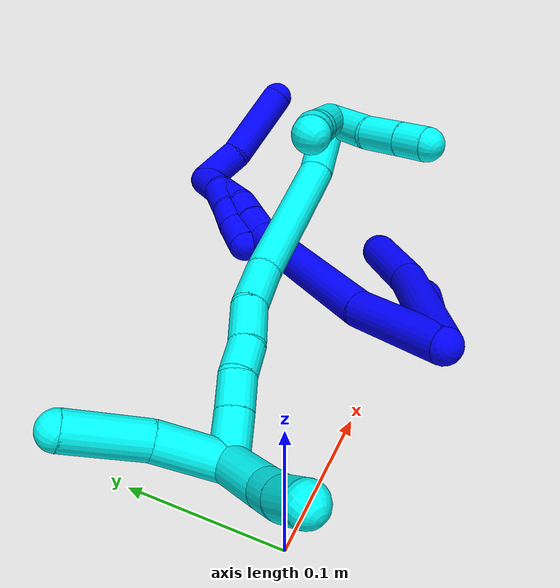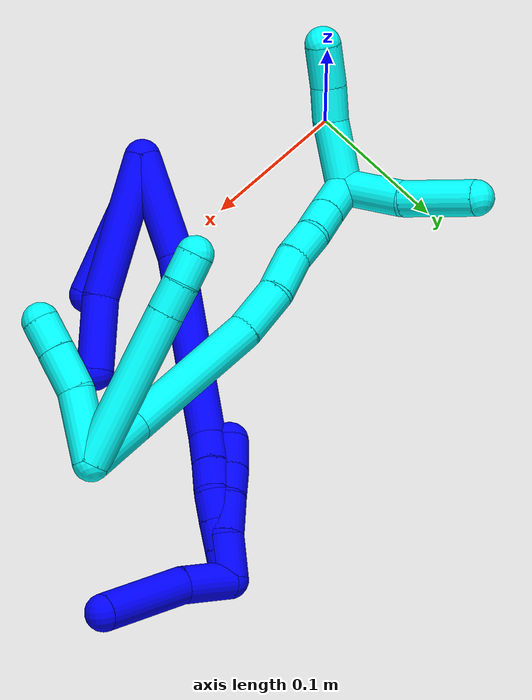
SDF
<sdf version="1.7">
 <world name="default">
  <model name="1">
   <static>0</static>
   <link name="1">
    <collision name="collision-cylinder-e_1_2_8">
     <pose>0.005926 0.026639 0.041628 -0.56926 0.119333 -0.034952</pose>
     <geometry><cylinder><radius>0.0125</radius><length>0.099551</length></cylinder></geometry>
     <surface>
      <friction><ode><mu>1.16</mu><mu2>1.16</mu2><slip1>0</slip1><slip2>0</slip2></ode></friction>
      <contact><ode><kp>1e+06</kp><kd>1</kd><max_vel>0</max_vel><min_depth>0.001</min_depth></ode></contact>
     </surface>
    </collision>
    <visual name="visual-cylinder-e_1_2_8">
     <pose>0.005926 0.026639 0.041628 -0.56926 0.119333 -0.034952</pose>
     <geometry><cylinder><radius>0.0125</radius><length>0.099551</length></cylinder></geometry>
     <material><ambient>0 0 1 1</ambient></material>
    </visual>
    <collision name="collision-cylinder-e_2_8_6">
     <pose>0.01939 0.063236 0.105171 -0.426524 0.303489 -0.066207</pose>
     <geometry><cylinder><radius>0.0125</radius><length>0.050449</length></cylinder></geometry>
     <surface>
      <friction><ode><mu>1.16</mu><mu2>1.16</mu2><slip1>0</slip1><slip2>0</slip2></ode></friction>
      <contact><ode><kp>1e+06</kp><kd>1</kd><max_vel>0</max_vel><min_depth>0.001</min_depth></ode></contact>
     </surface>
    </collision>
    <visual name="visual-cylinder-e_2_8_6">
     <pose>0.01939 0.063236 0.105171 -0.426524 0.303489 -0.066207</pose>
     <geometry><cylinder><radius>0.0125</radius><length>0.050449</length></cylinder></geometry>
     <material><ambient>0 0 1 1</ambient></material>
    </visual>
    <collision name="collision-cylinder-e_1_2_9">
     <pose>-0.000375 0.004356 0.010664 -0.387774 -0.03258 0.006398</pose>
     <geometry><cylinder><radius>0.0125</radius><length>0.02305</length></cylinder></geometry>
     <surface>
      <friction><ode><mu>1.16</mu><mu2>1.16</mu2><slip1>0</slip1><slip2>0</slip2></ode></friction>
      <contact><ode><kp>1e+06</kp><kd>1</kd><max_vel>0</max_vel><min_depth>0.001</min_depth></ode></contact>
     </surface>
    </collision>
    <visual name="visual-cylinder-e_1_2_9">
     <pose>-0.000375 0.004356 0.010664 -0.387774 -0.03258 0.006398</pose>
     <geometry><cylinder><radius>0.0125</radius><length>0.02305</length></cylinder></geometry>
     <material><ambient>0 0 1 1</ambient></material>
    </visual>
    <collision name="collision-cylinder-e_2_9_5">
     <pose>-0.003172 0.031211 0.052443 -0.626063 -0.062982 0.020392</pose>
     <geometry><cylinder><radius>0.0125</radius><length>0.07695</length></cylinder></geometry>
     <surface>
      <friction><ode><mu>1.16</mu><mu2>1.16</mu2><slip1>0</slip1><slip2>0</slip2></ode></friction>
      <contact><ode><kp>1e+06</kp><kd>1</kd><max_vel>0</max_vel><min_depth>0.001</min_depth></ode></contact>
     </surface>
    </collision>
    <visual name="visual-cylinder-e_2_9_5">
     <pose>-0.003172 0.031211 0.052443 -0.626063 -0.062982 0.020392</pose>
     <geometry><cylinder><radius>0.0125</radius><length>0.07695</length></cylinder></geometry>
     <material><ambient>0 0 1 1</ambient></material>
    </visual>
    <collision name="collision-cylinder-e_1_2_10">
     <pose>0.016101 0.001353 0.032025 -0.042237 0.465493 -0.010013</pose>
     <geometry><cylinder><radius>0.0125</radius><length>0.07174</length></cylinder></geometry>
     <surface>
      <friction><ode><mu>1.16</mu><mu2>1.16</mu2><slip1>0</slip1><slip2>0</slip2></ode></friction>
      <contact><ode><kp>1e+06</kp><kd>1</kd><max_vel>0</max_vel><min_depth>0.001</min_depth></ode></contact>
     </surface>
    </collision>
    <visual name="visual-cylinder-e_1_2_10">
     <pose>0.016101 0.001353 0.032025 -0.042237 0.465493 -0.010013</pose>
     <geometry><cylinder><radius>0.0125</radius><length>0.07174</length></cylinder></geometry>
     <material><ambient>0 0 1 1</ambient></material>
    </visual>
    <collision name="collision-cylinder-e_2_10_11">
     <pose>0.061383 0.016496 0.118464 -0.248183 0.4794 -0.06095</pose>
     <geometry><cylinder><radius>0.0125</radius><length>0.126531</length></cylinder></geometry>
     <surface>
      <friction><ode><mu>1.16</mu><mu2>1.16</mu2><slip1>0</slip1><slip2>0</slip2></ode></friction>
      <contact><ode><kp>1e+06</kp><kd>1</kd><max_vel>0</max_vel><min_depth>0.001</min_depth></ode></contact>
     </surface>
    </collision>
    <visual name="visual-cylinder-e_2_10_11">
     <pose>0.061383 0.016496 0.118464 -0.248183 0.4794 -0.06095</pose>
     <geometry><cylinder><radius>0.0125</radius><length>0.126531</length></cylinder></geometry>
     <material><ambient>0 0 1 1</ambient></material>
    </visual>
    <collision name="collision-cylinder-e_3_11_12">
     <pose>0.097565 0.034279 0.180044 -0.508527 0.706395 -0.191036</pose>
     <geometry><cylinder><radius>0.0125</radius><length>0.021572</length></cylinder></geometry>
     <surface>
      <friction><ode><mu>1.16</mu><mu2>1.16</mu2><slip1>0</slip1><slip2>0</slip2></ode></friction>
      <contact><ode><kp>1e+06</kp><kd>1</kd><max_vel>0</max_vel><min_depth>0.001</min_depth></ode></contact>
     </surface>
    </collision>
    <visual name="visual-cylinder-e_3_11_12">
     <pose>0.097565 0.034279 0.180044 -0.508527 0.706395 -0.191036</pose>
     <geometry><cylinder><radius>0.0125</radius><length>0.021572</length></cylinder></geometry>
     <material><ambient>0 0 1 1</ambient></material>
    </visual>
    <collision name="collision-cylinder-e_4_12_13">
     <pose>0.110524 0.042136 0.194294 -0.499099 0.636095 -0.167421</pose>
     <geometry><cylinder><radius>0.0125</radius><length>0.020058</length></cylinder></geometry>
     <surface>
      <friction><ode><mu>1.16</mu><mu2>1.16</mu2><slip1>0</slip1><slip2>0</slip2></ode></friction>
      <contact><ode><kp>1e+06</kp><kd>1</kd><max_vel>0</max_vel><min_depth>0.001</min_depth></ode></contact>
     </surface>
    </collision>
    <visual name="visual-cylinder-e_4_12_13">
     <pose>0.110524 0.042136 0.194294 -0.499099 0.636095 -0.167421</pose>
     <geometry><cylinder><radius>0.0125</radius><length>0.020058</length></cylinder></geometry>
     <material><ambient>0 0 1 1</ambient></material>
    </visual>
    <collision name="collision-cylinder-e_5_13_14">
     <pose>0.121071 0.048092 0.210034 -0.23737 0.475856 -0.057823</pose>
     <geometry><cylinder><radius>0.0125</radius><length>0.020039</length></cylinder></geometry>
     <surface>
      <friction><ode><mu>1.16</mu><mu2>1.16</mu2><slip1>0</slip1><slip2>0</slip2></ode></friction>
      <contact><ode><kp>1e+06</kp><kd>1</kd><max_vel>0</max_vel><min_depth>0.001</min_depth></ode></contact>
     </surface>
    </collision>
    <visual name="visual-cylinder-e_5_13_14">
     <pose>0.121071 0.048092 0.210034 -0.23737 0.475856 -0.057823</pose>
     <geometry><cylinder><radius>0.0125</radius><length>0.020039</length></cylinder></geometry>
     <material><ambient>0 0 1 1</ambient></material>
    </visual>
    <collision name="collision-cylinder-e_6_14_15">
     <pose>0.1305 0.052117 0.227238 -0.222231 0.50451 -0.0575</pose>
     <geometry><cylinder><radius>0.0125</radius><length>0.020019</length></cylinder></geometry>
     <surface>
      <friction><ode><mu>1.16</mu><mu2>1.16</mu2><slip1>0</slip1><slip2>0</slip2></ode></friction>
      <contact><ode><kp>1e+06</kp><kd>1</kd><max_vel>0</max_vel><min_depth>0.001</min_depth></ode></contact>
     </surface>
    </collision>
    <visual name="visual-cylinder-e_6_14_15">
     <pose>0.1305 0.052117 0.227238 -0.222231 0.50451 -0.0575</pose>
     <geometry><cylinder><radius>0.0125</radius><length>0.020019</length></cylinder></geometry>
     <material><ambient>0 0 1 1</ambient></material>
    </visual>
    <collision name="collision-cylinder-e_7_15_1">
     <pose>0.140125 0.056092 0.244347 -0.234281 0.498087 -0.059839</pose>
     <geometry><cylinder><radius>0.0125</radius><length>0.020041</length></cylinder></geometry>
     <surface>
      <friction><ode><mu>1.16</mu><mu2>1.16</mu2><slip1>0</slip1><slip2>0</slip2></ode></friction>
      <contact><ode><kp>1e+06</kp><kd>1</kd><max_vel>0</max_vel><min_depth>0.001</min_depth></ode></contact>
     </surface>
    </collision>
    <visual name="visual-cylinder-e_7_15_1">
     <pose>0.140125 0.056092 0.244347 -0.234281 0.498087 -0.059839</pose>
     <geometry><cylinder><radius>0.0125</radius><length>0.020041</length></cylinder></geometry>
     <material><ambient>0 0 1 1</ambient></material>
    </visual>
    <collision name="collision-cylinder-e_1_1_16">
     <pose>0.143988 0.075453 0.249761 -1.75065 -0.052464 0.062856</pose>
     <geometry><cylinder><radius>0.0125</radius><length>0.035252</length></cylinder></geometry>
     <surface>
      <friction><ode><mu>1.16</mu><mu2>1.16</mu2><slip1>0</slip1><slip2>0</slip2></ode></friction>
      <contact><ode><kp>1e+06</kp><kd>1</kd><max_vel>0</max_vel><min_depth>0.001</min_depth></ode></contact>
     </surface>
    </collision>
    <visual name="visual-cylinder-e_1_1_16">
     <pose>0.143988 0.075453 0.249761 -1.75065 -0.052464 0.062856</pose>
     <geometry><cylinder><radius>0.0125</radius><length>0.035252</length></cylinder></geometry>
     <material><ambient>0 0 1 1</ambient></material>
    </visual>
    <collision name="collision-cylinder-e_2_16_4">
     <pose>0.148313 0.124684 0.245166 -1.61608 0.162858 -0.170369</pose>
     <geometry><cylinder><radius>0.0125</radius><length>0.064748</length></cylinder></geometry>
     <surface>
      <friction><ode><mu>1.16</mu><mu2>1.16</mu2><slip1>0</slip1><slip2>0</slip2></ode></friction>
      <contact><ode><kp>1e+06</kp><kd>1</kd><max_vel>0</max_vel><min_depth>0.001</min_depth></ode></contact>
     </surface>
    </collision>
    <visual name="visual-cylinder-e_2_16_4">
     <pose>0.148313 0.124684 0.245166 -1.61608 0.162858 -0.170369</pose>
     <geometry><cylinder><radius>0.0125</radius><length>0.064748</length></cylinder></geometry>
     <material><ambient>0 0 1 1</ambient></material>
    </visual>
    <collision name="collision-cylinder-e_1_1_17">
     <pose>0.139148 0.054354 0.239704 2.86273 -0.397336 -1.92404</pose>
     <geometry><cylinder><radius>0.0125</radius><length>0.029794</length></cylinder></geometry>
     <surface>
      <friction><ode><mu>1.16</mu><mu2>1.16</mu2><slip1>0</slip1><slip2>0</slip2></ode></friction>
      <contact><ode><kp>1e+06</kp><kd>1</kd><max_vel>0</max_vel><min_depth>0.001</min_depth></ode></contact>
     </surface>
    </collision>
    <visual name="visual-cylinder-e_1_1_17">
     <pose>0.139148 0.054354 0.239704 2.86273 -0.397336 -1.92404</pose>
     <geometry><cylinder><radius>0.0125</radius><length>0.029794</length></cylinder></geometry>
     <material><ambient>0 0 1 1</ambient></material>
    </visual>
    <collision name="collision-cylinder-e_2_17_18">
     <pose>0.126891 0.044109 0.21645 2.56996 -0.49775 -1.42609</pose>
     <geometry><cylinder><radius>0.0125</radius><length>0.027196</length></cylinder></geometry>
     <surface>
      <friction><ode><mu>1.16</mu><mu2>1.16</mu2><slip1>0</slip1><slip2>0</slip2></ode></friction>
      <contact><ode><kp>1e+06</kp><kd>1</kd><max_vel>0</max_vel><min_depth>0.001</min_depth></ode></contact>
     </surface>
    </collision>
    <visual name="visual-cylinder-e_2_17_18">
     <pose>0.126891 0.044109 0.21645 2.56996 -0.49775 -1.42609</pose>
     <geometry><cylinder><radius>0.0125</radius><length>0.027196</length></cylinder></geometry>
     <material><ambient>0 0 1 1</ambient></material>
    </visual>
    <collision name="collision-cylinder-e_3_18_19">
     <pose>0.114572 0.032246 0.20008 2.43475 -0.611284 -1.41513</pose>
     <geometry><cylinder><radius>0.0125</radius><length>0.020303</length></cylinder></geometry>
     <surface>
      <friction><ode><mu>1.16</mu><mu2>1.16</mu2><slip1>0</slip1><slip2>0</slip2></ode></friction>
      <contact><ode><kp>1e+06</kp><kd>1</kd><max_vel>0</max_vel><min_depth>0.001</min_depth></ode></contact>
     </surface>
    </collision>
    <visual name="visual-cylinder-e_3_18_19">
     <pose>0.114572 0.032246 0.20008 2.43475 -0.611284 -1.41513</pose>
     <geometry><cylinder><radius>0.0125</radius><length>0.020303</length></cylinder></geometry>
     <material><ambient>0 0 1 1</ambient></material>
    </visual>
    <collision name="collision-cylinder-e_4_19_3">
     <pose>0.102336 0.021791 0.185869 2.57158 -0.599997 -1.62508</pose>
     <geometry><cylinder><radius>0.0125</radius><length>0.022707</length></cylinder></geometry>
     <surface>
      <friction><ode><mu>1.16</mu><mu2>1.16</mu2><slip1>0</slip1><slip2>0</slip2></ode></friction>
      <contact><ode><kp>1e+06</kp><kd>1</kd><max_vel>0</max_vel><min_depth>0.001</min_depth></ode></contact>
     </surface>
    </collision>
    <visual name="visual-cylinder-e_4_19_3">
     <pose>0.102336 0.021791 0.185869 2.57158 -0.599997 -1.62508</pose>
     <geometry><cylinder><radius>0.0125</radius><length>0.022707</length></cylinder></geometry>
     <material><ambient>0 0 1 1</ambient></material>
    </visual>
    <collision name="collision-sphere-3">
     <pose>0.095925 0.016734 0.17798 0 -0 0</pose>
     <geometry><sphere><radius>0.0125</radius></sphere></geometry>
     <surface>
      <friction><ode><mu>1.16</mu><mu2>1.16</mu2><slip1>0</slip1><slip2>0</slip2></ode></friction>
      <contact><ode><kp>1e+06</kp><kd>1</kd><max_vel>0</max_vel><min_depth>0.001</min_depth></ode></contact>
     </surface>
    </collision>
    <visual name="visual-sphere-3">
     <pose>0.095925 0.016734 0.17798 0 -0 0</pose>
     <geometry><sphere><radius>0.0125</radius></sphere></geometry>
     <material><ambient>0 0 1 1</ambient></material>
    </visual>
    <collision name="collision-sphere-19">
     <pose>0.108746 0.026848 0.193758 0 -0 0</pose>
     <geometry><sphere><radius>0.0125</radius></sphere></geometry>
     <surface>
      <friction><ode><mu>1.16</mu><mu2>1.16</mu2><slip1>0</slip1><slip2>0</slip2></ode></friction>
      <contact><ode><kp>1e+06</kp><kd>1</kd><max_vel>0</max_vel><min_depth>0.001</min_depth></ode></contact>
     </surface>
    </collision>
    <visual name="visual-sphere-19">
     <pose>0.108746 0.026848 0.193758 0 -0 0</pose>
     <geometry><sphere><radius>0.0125</radius></sphere></geometry>
     <material><ambient>0 0 1 1</ambient></material>
    </visual>
    <collision name="collision-sphere-10">
     <pose>0.032202 0.002707 0.06405 0 -0 0</pose>
     <geometry><sphere><radius>0.0125</radius></sphere></geometry>
     <surface>
      <friction><ode><mu>1.16</mu><mu2>1.16</mu2><slip1>0</slip1><slip2>0</slip2></ode></friction>
      <contact><ode><kp>1e+06</kp><kd>1</kd><max_vel>0</max_vel><min_depth>0.001</min_depth></ode></contact>
     </surface>
    </collision>
    <visual name="visual-sphere-10">
     <pose>0.032202 0.002707 0.06405 0 -0 0</pose>
     <geometry><sphere><radius>0.0125</radius></sphere></geometry>
     <material><ambient>0 0 1 1</ambient></material>
    </visual>
    <collision name="collision-sphere-5">
     <pose>-0.005594 0.053711 0.083559 0 -0 0</pose>
     <geometry><sphere><radius>0.0125</radius></sphere></geometry>
     <surface>
      <friction><ode><mu>1.16</mu><mu2>1.16</mu2><slip1>0</slip1><slip2>0</slip2></ode></friction>
      <contact><ode><kp>1e+06</kp><kd>1</kd><max_vel>0</max_vel><min_depth>0.001</min_depth></ode></contact>
     </surface>
    </collision>
    <visual name="visual-sphere-5">
     <pose>-0.005594 0.053711 0.083559 0 -0 0</pose>
     <geometry><sphere><radius>0.0125</radius></sphere></geometry>
     <material><ambient>0 0 1 1</ambient></material>
    </visual>
    <collision name="collision-sphere-6">
     <pose>0.026928 0.073195 0.127086 0 -0 0</pose>
     <geometry><sphere><radius>0.0125</radius></sphere></geometry>
     <surface>
      <friction><ode><mu>1.16</mu><mu2>1.16</mu2><slip1>0</slip1><slip2>0</slip2></ode></friction>
      <contact><ode><kp>1e+06</kp><kd>1</kd><max_vel>0</max_vel><min_depth>0.001</min_depth></ode></contact>
     </surface>
    </collision>
    <visual name="visual-sphere-6">
     <pose>0.026928 0.073195 0.127086 0 -0 0</pose>
     <geometry><sphere><radius>0.0125</radius></sphere></geometry>
     <material><ambient>0 0 1 1</ambient></material>
    </visual>
    <collision name="collision-sphere-9">
     <pose>-0.000751 0.008711 0.021327 0 -0 0</pose>
     <geometry><sphere><radius>0.0125</radius></sphere></geometry>
     <surface>
      <friction><ode><mu>1.16</mu><mu2>1.16</mu2><slip1>0</slip1><slip2>0</slip2></ode></friction>
      <contact><ode><kp>1e+06</kp><kd>1</kd><max_vel>0</max_vel><min_depth>0.001</min_depth></ode></contact>
     </surface>
    </collision>
    <visual name="visual-sphere-9">
     <pose>-0.000751 0.008711 0.021327 0 -0 0</pose>
     <geometry><sphere><radius>0.0125</radius></sphere></geometry>
     <material><ambient>0 0 1 1</ambient></material>
    </visual>
    <collision name="collision-sphere-2">
     <geometry><sphere><radius>0.0125</radius></sphere></geometry>
     <surface>
      <friction><ode><mu>1.16</mu><mu2>1.16</mu2><slip1>0</slip1><slip2>0</slip2></ode></friction>
      <contact><ode><kp>1e+06</kp><kd>1</kd><max_vel>0</max_vel><min_depth>0.001</min_depth></ode></contact>
     </surface>
    </collision>
    <visual name="visual-sphere-2">
     <geometry><sphere><radius>0.0125</radius></sphere></geometry>
     <material><ambient>0 0 1 1</ambient></material>
    </visual>
    <collision name="collision-sphere-8">
     <pose>0.011852 0.053277 0.083256 0 -0 0</pose>
     <geometry><sphere><radius>0.0125</radius></sphere></geometry>
     <surface>
      <friction><ode><mu>1.16</mu><mu2>1.16</mu2><slip1>0</slip1><slip2>0</slip2></ode></friction>
      <contact><ode><kp>1e+06</kp><kd>1</kd><max_vel>0</max_vel><min_depth>0.001</min_depth></ode></contact>
     </surface>
    </collision>
    <visual name="visual-sphere-8">
     <pose>0.011852 0.053277 0.083256 0 -0 0</pose>
     <geometry><sphere><radius>0.0125</radius></sphere></geometry>
     <material><ambient>0 0 1 1</ambient></material>
    </visual>
    <collision name="collision-sphere-11">
     <pose>0.090563 0.030285 0.172877 0 -0 0</pose>
     <geometry><sphere><radius>0.0125</radius></sphere></geometry>
     <surface>
      <friction><ode><mu>1.16</mu><mu2>1.16</mu2><slip1>0</slip1><slip2>0</slip2></ode></friction>
      <contact><ode><kp>1e+06</kp><kd>1</kd><max_vel>0</max_vel><min_depth>0.001</min_depth></ode></contact>
     </surface>
    </collision>
    <visual name="visual-sphere-11">
     <pose>0.090563 0.030285 0.172877 0 -0 0</pose>
     <geometry><sphere><radius>0.0125</radius></sphere></geometry>
     <material><ambient>0 0 1 1</ambient></material>
    </visual>
    <collision name="collision-sphere-12">
     <pose>0.104566 0.038274 0.187211 0 -0 0</pose>
     <geometry><sphere><radius>0.0125</radius></sphere></geometry>
     <surface>
      <friction><ode><mu>1.16</mu><mu2>1.16</mu2><slip1>0</slip1><slip2>0</slip2></ode></friction>
      <contact><ode><kp>1e+06</kp><kd>1</kd><max_vel>0</max_vel><min_depth>0.001</min_depth></ode></contact>
     </surface>
    </collision>
    <visual name="visual-sphere-12">
     <pose>0.104566 0.038274 0.187211 0 -0 0</pose>
     <geometry><sphere><radius>0.0125</radius></sphere></geometry>
     <material><ambient>0 0 1 1</ambient></material>
    </visual>
    <collision name="collision-sphere-13">
     <pose>0.116481 0.045997 0.201378 0 -0 0</pose>
     <geometry><sphere><radius>0.0125</radius></sphere></geometry>
     <surface>
      <friction><ode><mu>1.16</mu><mu2>1.16</mu2><slip1>0</slip1><slip2>0</slip2></ode></friction>
      <contact><ode><kp>1e+06</kp><kd>1</kd><max_vel>0</max_vel><min_depth>0.001</min_depth></ode></contact>
     </surface>
    </collision>
    <visual name="visual-sphere-13">
     <pose>0.116481 0.045997 0.201378 0 -0 0</pose>
     <geometry><sphere><radius>0.0125</radius></sphere></geometry>
     <material><ambient>0 0 1 1</ambient></material>
    </visual>
    <collision name="collision-sphere-14">
     <pose>0.125661 0.050186 0.218691 0 -0 0</pose>
     <geometry><sphere><radius>0.0125</radius></sphere></geometry>
     <surface>
      <friction><ode><mu>1.16</mu><mu2>1.16</mu2><slip1>0</slip1><slip2>0</slip2></ode></friction>
      <contact><ode><kp>1e+06</kp><kd>1</kd><max_vel>0</max_vel><min_depth>0.001</min_depth></ode></contact>
     </surface>
    </collision>
    <visual name="visual-sphere-14">
     <pose>0.125661 0.050186 0.218691 0 -0 0</pose>
     <geometry><sphere><radius>0.0125</radius></sphere></geometry>
     <material><ambient>0 0 1 1</ambient></material>
    </visual>
    <collision name="collision-sphere-15">
     <pose>0.135338 0.054048 0.235784 0 -0 0</pose>
     <geometry><sphere><radius>0.0125</radius></sphere></geometry>
     <surface>
      <friction><ode><mu>1.16</mu><mu2>1.16</mu2><slip1>0</slip1><slip2>0</slip2></ode></friction>
      <contact><ode><kp>1e+06</kp><kd>1</kd><max_vel>0</max_vel><min_depth>0.001</min_depth></ode></contact>
     </surface>
    </collision>
    <visual name="visual-sphere-15">
     <pose>0.135338 0.054048 0.235784 0 -0 0</pose>
     <geometry><sphere><radius>0.0125</radius></sphere></geometry>
     <material><ambient>0 0 1 1</ambient></material>
    </visual>
    <collision name="collision-sphere-1">
     <pose>0.144913 0.058136 0.25291 0 -0 0</pose>
     <geometry><sphere><radius>0.0125</radius></sphere></geometry>
     <surface>
      <friction><ode><mu>1.16</mu><mu2>1.16</mu2><slip1>0</slip1><slip2>0</slip2></ode></friction>
      <contact><ode><kp>1e+06</kp><kd>1</kd><max_vel>0</max_vel><min_depth>0.001</min_depth></ode></contact>
     </surface>
    </collision>
    <visual name="visual-sphere-1">
     <pose>0.144913 0.058136 0.25291 0 -0 0</pose>
     <geometry><sphere><radius>0.0125</radius></sphere></geometry>
     <material><ambient>0 0 1 1</ambient></material>
    </visual>
    <collision name="collision-sphere-18">
     <pose>0.120399 0.037645 0.206401 0 -0 0</pose>
     <geometry><sphere><radius>0.0125</radius></sphere></geometry>
     <surface>
      <friction><ode><mu>1.16</mu><mu2>1.16</mu2><slip1>0</slip1><slip2>0</slip2></ode></friction>
      <contact><ode><kp>1e+06</kp><kd>1</kd><max_vel>0</max_vel><min_depth>0.001</min_depth></ode></contact>
     </surface>
    </collision>
    <visual name="visual-sphere-18">
     <pose>0.120399 0.037645 0.206401 0 -0 0</pose>
     <geometry><sphere><radius>0.0125</radius></sphere></geometry>
     <material><ambient>0 0 1 1</ambient></material>
    </visual>
    <collision name="collision-sphere-16">
     <pose>0.143064 0.092771 0.246612 0 -0 0</pose>
     <geometry><sphere><radius>0.0125</radius></sphere></geometry>
     <surface>
      <friction><ode><mu>1.16</mu><mu2>1.16</mu2><slip1>0</slip1><slip2>0</slip2></ode></friction>
      <contact><ode><kp>1e+06</kp><kd>1</kd><max_vel>0</max_vel><min_depth>0.001</min_depth></ode></contact>
     </surface>
    </collision>
    <visual name="visual-sphere-16">
     <pose>0.143064 0.092771 0.246612 0 -0 0</pose>
     <geometry><sphere><radius>0.0125</radius></sphere></geometry>
     <material><ambient>0 0 1 1</ambient></material>
    </visual>
    <collision name="collision-sphere-4">
     <pose>0.153562 0.156597 0.24372 0 -0 0</pose>
     <geometry><sphere><radius>0.0125</radius></sphere></geometry>
     <surface>
      <friction><ode><mu>1.16</mu><mu2>1.16</mu2><slip1>0</slip1><slip2>0</slip2></ode></friction>
      <contact><ode><kp>1e+06</kp><kd>1</kd><max_vel>0</max_vel><min_depth>0.001</min_depth></ode></contact>
     </surface>
    </collision>
    <visual name="visual-sphere-4">
     <pose>0.153562 0.156597 0.24372 0 -0 0</pose>
     <geometry><sphere><radius>0.0125</radius></sphere></geometry>
     <material><ambient>0 0 1 1</ambient></material>
    </visual>
    <collision name="collision-sphere-17">
     <pose>0.133383 0.050573 0.226498 0 -0 0</pose>
     <geometry><sphere><radius>0.0125</radius></sphere></geometry>
     <surface>
      <friction><ode><mu>1.16</mu><mu2>1.16</mu2><slip1>0</slip1><slip2>0</slip2></ode></friction>
      <contact><ode><kp>1e+06</kp><kd>1</kd><max_vel>0</max_vel><min_depth>0.001</min_depth></ode></contact>
     </surface>
    </collision>
    <visual name="visual-sphere-17">
     <pose>0.133383 0.050573 0.226498 0 -0 0</pose>
     <geometry><sphere><radius>0.0125</radius></sphere></geometry>
     <material><ambient>0 0 1 1</ambient></material>
    </visual>
    <inertial>
     <pose>0.065775 0.039928 0.131258 0 -0 0</pose>
     <mass>0.75</mass>
     <inertia>
      <ixx>0.000344</ixx>
      <ixy>0</ixy>
      <ixz>0</ixz>
      <iyy>0.000325</iyy>
      <iyz>0</iyz>
      <izz>-0.000223</izz>
     </inertia>
    </inertial>
   </link>
   <pose>0.13029 -0.044235 0.057343 2.6939 -0.765397 1.59016</pose>
  </model>
  <model name="3">
   <static>0</static>
   <link name="3">
    <collision name="collision-cylinder-e_1_2_8">
     <pose>-0.024963 -0.031394 -0.036076 2.42548 -0.481086 -1.16052</pose>
     <geometry><cylinder><radius>0.0125</radius><length>0.107892</length></cylinder></geometry>
     <surface>
      <friction><ode><mu>1.16</mu><mu2>1.16</mu2><slip1>0</slip1><slip2>0</slip2></ode></friction>
      <contact><ode><kp>1e+06</kp><kd>1</kd><max_vel>0</max_vel><min_depth>0.001</min_depth></ode></contact>
     </surface>
    </collision>
    <visual name="visual-cylinder-e_1_2_8">
     <pose>-0.024963 -0.031394 -0.036076 2.42548 -0.481086 -1.16052</pose>
     <geometry><cylinder><radius>0.0125</radius><length>0.107892</length></cylinder></geometry>
     <material><ambient>0.003922 1 0.996078 1</ambient></material>
    </visual>
    <collision name="collision-cylinder-e_2_8_9">
     <pose>-0.054978 -0.0692 -0.079207 2.4039 -0.487213 -1.14287</pose>
     <geometry><cylinder><radius>0.0125</radius><length>0.02158</length></cylinder></geometry>
     <surface>
      <friction><ode><mu>1.16</mu><mu2>1.16</mu2><slip1>0</slip1><slip2>0</slip2></ode></friction>
      <contact><ode><kp>1e+06</kp><kd>1</kd><max_vel>0</max_vel><min_depth>0.001</min_depth></ode></contact>
     </surface>
    </collision>
    <visual name="visual-cylinder-e_2_8_9">
     <pose>-0.054978 -0.0692 -0.079207 2.4039 -0.487213 -1.14287</pose>
     <geometry><cylinder><radius>0.0125</radius><length>0.02158</length></cylinder></geometry>
     <material><ambient>0.003922 1 0.996078 1</ambient></material>
    </visual>
    <collision name="collision-cylinder-e_3_9_6">
     <pose>-0.065033 -0.080833 -0.093547 2.5197 -0.50924 -1.36147</pose>
     <geometry><cylinder><radius>0.0125</radius><length>0.020528</length></cylinder></geometry>
     <surface>
      <friction><ode><mu>1.16</mu><mu2>1.16</mu2><slip1>0</slip1><slip2>0</slip2></ode></friction>
      <contact><ode><kp>1e+06</kp><kd>1</kd><max_vel>0</max_vel><min_depth>0.001</min_depth></ode></contact>
     </surface>
    </collision>
    <visual name="visual-cylinder-e_3_9_6">
     <pose>-0.065033 -0.080833 -0.093547 2.5197 -0.50924 -1.36147</pose>
     <geometry><cylinder><radius>0.0125</radius><length>0.020528</length></cylinder></geometry>
     <material><ambient>0.003922 1 0.996078 1</ambient></material>
    </visual>
    <collision name="collision-cylinder-e_1_2_10">
     <pose>0.000959 -0.004399 -0.023725 2.95826 0.039706 0.425475</pose>
     <geometry><cylinder><radius>0.0125</radius><length>0.048297</length></cylinder></geometry>
     <surface>
      <friction><ode><mu>1.16</mu><mu2>1.16</mu2><slip1>0</slip1><slip2>0</slip2></ode></friction>
      <contact><ode><kp>1e+06</kp><kd>1</kd><max_vel>0</max_vel><min_depth>0.001</min_depth></ode></contact>
     </surface>
    </collision>
    <visual name="visual-cylinder-e_1_2_10">
     <pose>0.000959 -0.004399 -0.023725 2.95826 0.039706 0.425475</pose>
     <geometry><cylinder><radius>0.0125</radius><length>0.048297</length></cylinder></geometry>
     <material><ambient>0.003922 1 0.996078 1</ambient></material>
    </visual>
    <collision name="collision-cylinder-e_2_10_11">
     <pose>0.005936 -0.010066 -0.061657 3.05253 0.274642 2.51773</pose>
     <geometry><cylinder><radius>0.0125</radius><length>0.029637</length></cylinder></geometry>
     <surface>
      <friction><ode><mu>1.16</mu><mu2>1.16</mu2><slip1>0</slip1><slip2>0</slip2></ode></friction>
      <contact><ode><kp>1e+06</kp><kd>1</kd><max_vel>0</max_vel><min_depth>0.001</min_depth></ode></contact>
     </surface>
    </collision>
    <visual name="visual-cylinder-e_2_10_11">
     <pose>0.005936 -0.010066 -0.061657 3.05253 0.274642 2.51773</pose>
     <geometry><cylinder><radius>0.0125</radius><length>0.029637</length></cylinder></geometry>
     <material><ambient>0.003922 1 0.996078 1</ambient></material>
    </visual>
    <collision name="collision-cylinder-e_3_11_5">
     <pose>0.013012 -0.012065 -0.086439 3.07266 0.280785 2.66296</pose>
     <geometry><cylinder><radius>0.0125</radius><length>0.022066</length></cylinder></geometry>
     <surface>
      <friction><ode><mu>1.16</mu><mu2>1.16</mu2><slip1>0</slip1><slip2>0</slip2></ode></friction>
      <contact><ode><kp>1e+06</kp><kd>1</kd><max_vel>0</max_vel><min_depth>0.001</min_depth></ode></contact>
     </surface>
    </collision>
    <visual name="visual-cylinder-e_3_11_5">
     <pose>0.013012 -0.012065 -0.086439 3.07266 0.280785 2.66296</pose>
     <geometry><cylinder><radius>0.0125</radius><length>0.022066</length></cylinder></geometry>
     <material><ambient>0.003922 1 0.996078 1</ambient></material>
    </visual>
    <collision name="collision-cylinder-e_1_2_12">
     <pose>-0.01984 0.005454 -0.013891 -2.76742 -0.925898 2.41659</pose>
     <geometry><cylinder><radius>0.0125</radius><length>0.049651</length></cylinder></geometry>
     <surface>
      <friction><ode><mu>1.16</mu><mu2>1.16</mu2><slip1>0</slip1><slip2>0</slip2></ode></friction>
      <contact><ode><kp>1e+06</kp><kd>1</kd><max_vel>0</max_vel><min_depth>0.001</min_depth></ode></contact>
     </surface>
    </collision>
    <visual name="visual-cylinder-e_1_2_12">
     <pose>-0.01984 0.005454 -0.013891 -2.76742 -0.925898 2.41659</pose>
     <geometry><cylinder><radius>0.0125</radius><length>0.049651</length></cylinder></geometry>
     <material><ambient>0.003922 1 0.996078 1</ambient></material>
    </visual>
    <collision name="collision-cylinder-e_2_12_13">
     <pose>-0.084172 0.007201 -0.056063 3.01123 -1.00072 -2.90395</pose>
     <geometry><cylinder><radius>0.0125</radius><length>0.105701</length></cylinder></geometry>
     <surface>
      <friction><ode><mu>1.16</mu><mu2>1.16</mu2><slip1>0</slip1><slip2>0</slip2></ode></friction>
      <contact><ode><kp>1e+06</kp><kd>1</kd><max_vel>0</max_vel><min_depth>0.001</min_depth></ode></contact>
     </surface>
    </collision>
    <visual name="visual-cylinder-e_2_12_13">
     <pose>-0.084172 0.007201 -0.056063 3.01123 -1.00072 -2.90395</pose>
     <geometry><cylinder><radius>0.0125</radius><length>0.105701</length></cylinder></geometry>
     <material><ambient>0.003922 1 0.996078 1</ambient></material>
    </visual>
    <collision name="collision-cylinder-e_3_13_14">
     <pose>-0.141768 0.000711 -0.095752 2.9024 -0.840088 -2.61591</pose>
     <geometry><cylinder><radius>0.0125</radius><length>0.035189</length></cylinder></geometry>
     <surface>
      <friction><ode><mu>1.16</mu><mu2>1.16</mu2><slip1>0</slip1><slip2>0</slip2></ode></friction>
      <contact><ode><kp>1e+06</kp><kd>1</kd><max_vel>0</max_vel><min_depth>0.001</min_depth></ode></contact>
     </surface>
    </collision>
    <visual name="visual-cylinder-e_3_13_14">
     <pose>-0.141768 0.000711 -0.095752 2.9024 -0.840088 -2.61591</pose>
     <geometry><cylinder><radius>0.0125</radius><length>0.035189</length></cylinder></geometry>
     <material><ambient>0.003922 1 0.996078 1</ambient></material>
    </visual>
    <collision name="collision-cylinder-e_4_14_15">
     <pose>-0.164537 -0.002015 -0.119554 -3.13707 -0.662389 3.12845</pose>
     <geometry><cylinder><radius>0.0125</radius><length>0.031435</length></cylinder></geometry>
     <surface>
      <friction><ode><mu>1.16</mu><mu2>1.16</mu2><slip1>0</slip1><slip2>0</slip2></ode></friction>
      <contact><ode><kp>1e+06</kp><kd>1</kd><max_vel>0</max_vel><min_depth>0.001</min_depth></ode></contact>
     </surface>
    </collision>
    <visual name="visual-cylinder-e_4_14_15">
     <pose>-0.164537 -0.002015 -0.119554 -3.13707 -0.662389 3.12845</pose>
     <geometry><cylinder><radius>0.0125</radius><length>0.031435</length></cylinder></geometry>
     <material><ambient>0.003922 1 0.996078 1</ambient></material>
    </visual>
    <collision name="collision-cylinder-e_5_15_16">
     <pose>-0.182955 -0.00247 -0.139654 3.07532 -0.847762 -2.99493</pose>
     <geometry><cylinder><radius>0.0125</radius><length>0.023346</length></cylinder></geometry>
     <surface>
      <friction><ode><mu>1.16</mu><mu2>1.16</mu2><slip1>0</slip1><slip2>0</slip2></ode></friction>
      <contact><ode><kp>1e+06</kp><kd>1</kd><max_vel>0</max_vel><min_depth>0.001</min_depth></ode></contact>
     </surface>
    </collision>
    <visual name="visual-cylinder-e_5_15_16">
     <pose>-0.182955 -0.00247 -0.139654 3.07532 -0.847762 -2.99493</pose>
     <geometry><cylinder><radius>0.0125</radius><length>0.023346</length></cylinder></geometry>
     <material><ambient>0.003922 1 0.996078 1</ambient></material>
    </visual>
    <collision name="collision-cylinder-e_6_16_17">
     <pose>-0.199677 -0.000613 -0.15583 -2.86887 -0.736219 2.458</pose>
     <geometry><cylinder><radius>0.0125</radius><length>0.023736</length></cylinder></geometry>
     <surface>
      <friction><ode><mu>1.16</mu><mu2>1.16</mu2><slip1>0</slip1><slip2>0</slip2></ode></friction>
      <contact><ode><kp>1e+06</kp><kd>1</kd><max_vel>0</max_vel><min_depth>0.001</min_depth></ode></contact>
     </surface>
    </collision>
    <visual name="visual-cylinder-e_6_16_17">
     <pose>-0.199677 -0.000613 -0.15583 -2.86887 -0.736219 2.458</pose>
     <geometry><cylinder><radius>0.0125</radius><length>0.023736</length></cylinder></geometry>
     <material><ambient>0.003922 1 0.996078 1</ambient></material>
    </visual>
    <collision name="collision-cylinder-e_7_17_1">
     <pose>-0.218296 0.004466 -0.175189 -2.89768 -0.759238 2.54549</pose>
     <geometry><cylinder><radius>0.0125</radius><length>0.030942</length></cylinder></geometry>
     <surface>
      <friction><ode><mu>1.16</mu><mu2>1.16</mu2><slip1>0</slip1><slip2>0</slip2></ode></friction>
      <contact><ode><kp>1e+06</kp><kd>1</kd><max_vel>0</max_vel><min_depth>0.001</min_depth></ode></contact>
     </surface>
    </collision>
    <visual name="visual-cylinder-e_7_17_1">
     <pose>-0.218296 0.004466 -0.175189 -2.89768 -0.759238 2.54549</pose>
     <geometry><cylinder><radius>0.0125</radius><length>0.030942</length></cylinder></geometry>
     <material><ambient>0.003922 1 0.996078 1</ambient></material>
    </visual>
    <collision name="collision-cylinder-e_1_1_18">
     <pose>-0.226217 -0.002162 -0.206938 2.72071 0.11881 0.543118</pose>
     <geometry><cylinder><radius>0.0125</radius><length>0.046033</length></cylinder></geometry>
     <surface>
      <friction><ode><mu>1.16</mu><mu2>1.16</mu2><slip1>0</slip1><slip2>0</slip2></ode></friction>
      <contact><ode><kp>1e+06</kp><kd>1</kd><max_vel>0</max_vel><min_depth>0.001</min_depth></ode></contact>
     </surface>
    </collision>
    <visual name="visual-cylinder-e_1_1_18">
     <pose>-0.226217 -0.002162 -0.206938 2.72071 0.11881 0.543118</pose>
     <geometry><cylinder><radius>0.0125</radius><length>0.046033</length></cylinder></geometry>
     <material><ambient>0.003922 1 0.996078 1</ambient></material>
    </visual>
    <collision name="collision-cylinder-e_2_18_19">
     <pose>-0.222649 -0.018924 -0.237556 2.49114 0.068385 0.202189</pose>
     <geometry><cylinder><radius>0.0125</radius><length>0.024581</length></cylinder></geometry>
     <surface>
      <friction><ode><mu>1.16</mu><mu2>1.16</mu2><slip1>0</slip1><slip2>0</slip2></ode></friction>
      <contact><ode><kp>1e+06</kp><kd>1</kd><max_vel>0</max_vel><min_depth>0.001</min_depth></ode></contact>
     </surface>
    </collision>
    <visual name="visual-cylinder-e_2_18_19">
     <pose>-0.222649 -0.018924 -0.237556 2.49114 0.068385 0.202189</pose>
     <geometry><cylinder><radius>0.0125</radius><length>0.024581</length></cylinder></geometry>
     <material><ambient>0.003922 1 0.996078 1</ambient></material>
    </visual>
    <collision name="collision-cylinder-e_3_19_4">
     <pose>-0.219349 -0.035944 -0.258166 2.4176 0.168258 0.438225</pose>
     <geometry><cylinder><radius>0.0125</radius><length>0.029386</length></cylinder></geometry>
     <surface>
      <friction><ode><mu>1.16</mu><mu2>1.16</mu2><slip1>0</slip1><slip2>0</slip2></ode></friction>
      <contact><ode><kp>1e+06</kp><kd>1</kd><max_vel>0</max_vel><min_depth>0.001</min_depth></ode></contact>
     </surface>
    </collision>
    <visual name="visual-cylinder-e_3_19_4">
     <pose>-0.219349 -0.035944 -0.258166 2.4176 0.168258 0.438225</pose>
     <geometry><cylinder><radius>0.0125</radius><length>0.029386</length></cylinder></geometry>
     <material><ambient>0.003922 1 0.996078 1</ambient></material>
    </visual>
    <collision name="collision-cylinder-e_1_1_20">
     <pose>-0.242516 -0.006837 -0.173079 0.822889 -0.617391 -0.276519</pose>
     <geometry><cylinder><radius>0.0125</radius><length>0.046884</length></cylinder></geometry>
     <surface>
      <friction><ode><mu>1.16</mu><mu2>1.16</mu2><slip1>0</slip1><slip2>0</slip2></ode></friction>
      <contact><ode><kp>1e+06</kp><kd>1</kd><max_vel>0</max_vel><min_depth>0.001</min_depth></ode></contact>
     </surface>
    </collision>
    <visual name="visual-cylinder-e_1_1_20">
     <pose>-0.242516 -0.006837 -0.173079 0.822889 -0.617391 -0.276519</pose>
     <geometry><cylinder><radius>0.0125</radius><length>0.046884</length></cylinder></geometry>
     <material><ambient>0.003922 1 0.996078 1</ambient></material>
    </visual>
    <collision name="collision-cylinder-e_2_20_3">
     <pose>-0.274434 -0.037333 -0.150229 1.03212 -0.762652 -0.447341</pose>
     <geometry><cylinder><radius>0.0125</radius><length>0.053116</length></cylinder></geometry>
     <surface>
      <friction><ode><mu>1.16</mu><mu2>1.16</mu2><slip1>0</slip1><slip2>0</slip2></ode></friction>
      <contact><ode><kp>1e+06</kp><kd>1</kd><max_vel>0</max_vel><min_depth>0.001</min_depth></ode></contact>
     </surface>
    </collision>
    <visual name="visual-cylinder-e_2_20_3">
     <pose>-0.274434 -0.037333 -0.150229 1.03212 -0.762652 -0.447341</pose>
     <geometry><cylinder><radius>0.0125</radius><length>0.053116</length></cylinder></geometry>
     <material><ambient>0.003922 1 0.996078 1</ambient></material>
    </visual>
    <collision name="collision-sphere-3">
     <pose>-0.292782 -0.053815 -0.140378 0 -0 0</pose>
     <geometry><sphere><radius>0.0125</radius></sphere></geometry>
     <surface>
      <friction><ode><mu>1.16</mu><mu2>1.16</mu2><slip1>0</slip1><slip2>0</slip2></ode></friction>
      <contact><ode><kp>1e+06</kp><kd>1</kd><max_vel>0</max_vel><min_depth>0.001</min_depth></ode></contact>
     </surface>
    </collision>
    <visual name="visual-sphere-3">
     <pose>-0.292782 -0.053815 -0.140378 0 -0 0</pose>
     <geometry><sphere><radius>0.0125</radius></sphere></geometry>
     <material><ambient>0.003922 1 0.996078 1</ambient></material>
    </visual>
    <collision name="collision-sphere-20">
     <pose>-0.256087 -0.02085 -0.160079 0 -0 0</pose>
     <geometry><sphere><radius>0.0125</radius></sphere></geometry>
     <surface>
      <friction><ode><mu>1.16</mu><mu2>1.16</mu2><slip1>0</slip1><slip2>0</slip2></ode></friction>
      <contact><ode><kp>1e+06</kp><kd>1</kd><max_vel>0</max_vel><min_depth>0.001</min_depth></ode></contact>
     </surface>
    </collision>
    <visual name="visual-sphere-20">
     <pose>-0.256087 -0.02085 -0.160079 0 -0 0</pose>
     <geometry><sphere><radius>0.0125</radius></sphere></geometry>
     <material><ambient>0.003922 1 0.996078 1</ambient></material>
    </visual>
    <collision name="collision-sphere-4">
     <pose>-0.216888 -0.045539 -0.269018 0 -0 0</pose>
     <geometry><sphere><radius>0.0125</radius></sphere></geometry>
     <surface>
      <friction><ode><mu>1.16</mu><mu2>1.16</mu2><slip1>0</slip1><slip2>0</slip2></ode></friction>
      <contact><ode><kp>1e+06</kp><kd>1</kd><max_vel>0</max_vel><min_depth>0.001</min_depth></ode></contact>
     </surface>
    </collision>
    <visual name="visual-sphere-4">
     <pose>-0.216888 -0.045539 -0.269018 0 -0 0</pose>
     <geometry><sphere><radius>0.0125</radius></sphere></geometry>
     <material><ambient>0.003922 1 0.996078 1</ambient></material>
    </visual>
    <collision name="collision-sphere-11">
     <pose>0.009955 -0.011335 -0.075863 0 -0 0</pose>
     <geometry><sphere><radius>0.0125</radius></sphere></geometry>
     <surface>
      <friction><ode><mu>1.16</mu><mu2>1.16</mu2><slip1>0</slip1><slip2>0</slip2></ode></friction>
      <contact><ode><kp>1e+06</kp><kd>1</kd><max_vel>0</max_vel><min_depth>0.001</min_depth></ode></contact>
     </surface>
    </collision>
    <visual name="visual-sphere-11">
     <pose>0.009955 -0.011335 -0.075863 0 -0 0</pose>
     <geometry><sphere><radius>0.0125</radius></sphere></geometry>
     <material><ambient>0.003922 1 0.996078 1</ambient></material>
    </visual>
    <collision name="collision-sphere-10">
     <pose>0.001917 -0.008798 -0.04745 0 -0 0</pose>
     <geometry><sphere><radius>0.0125</radius></sphere></geometry>
     <surface>
      <friction><ode><mu>1.16</mu><mu2>1.16</mu2><slip1>0</slip1><slip2>0</slip2></ode></friction>
      <contact><ode><kp>1e+06</kp><kd>1</kd><max_vel>0</max_vel><min_depth>0.001</min_depth></ode></contact>
     </surface>
    </collision>
    <visual name="visual-sphere-10">
     <pose>0.001917 -0.008798 -0.04745 0 -0 0</pose>
     <geometry><sphere><radius>0.0125</radius></sphere></geometry>
     <material><ambient>0.003922 1 0.996078 1</ambient></material>
    </visual>
    <collision name="collision-sphere-6">
     <pose>-0.070037 -0.086054 -0.100831 0 -0 0</pose>
     <geometry><sphere><radius>0.0125</radius></sphere></geometry>
     <surface>
      <friction><ode><mu>1.16</mu><mu2>1.16</mu2><slip1>0</slip1><slip2>0</slip2></ode></friction>
      <contact><ode><kp>1e+06</kp><kd>1</kd><max_vel>0</max_vel><min_depth>0.001</min_depth></ode></contact>
     </surface>
    </collision>
    <visual name="visual-sphere-6">
     <pose>-0.070037 -0.086054 -0.100831 0 -0 0</pose>
     <geometry><sphere><radius>0.0125</radius></sphere></geometry>
     <material><ambient>0.003922 1 0.996078 1</ambient></material>
    </visual>
    <collision name="collision-sphere-9">
     <pose>-0.060029 -0.075613 -0.086263 0 -0 0</pose>
     <geometry><sphere><radius>0.0125</radius></sphere></geometry>
     <surface>
      <friction><ode><mu>1.16</mu><mu2>1.16</mu2><slip1>0</slip1><slip2>0</slip2></ode></friction>
      <contact><ode><kp>1e+06</kp><kd>1</kd><max_vel>0</max_vel><min_depth>0.001</min_depth></ode></contact>
     </surface>
    </collision>
    <visual name="visual-sphere-9">
     <pose>-0.060029 -0.075613 -0.086263 0 -0 0</pose>
     <geometry><sphere><radius>0.0125</radius></sphere></geometry>
     <material><ambient>0.003922 1 0.996078 1</ambient></material>
    </visual>
    <collision name="collision-sphere-2">
     <geometry><sphere><radius>0.0125</radius></sphere></geometry>
     <surface>
      <friction><ode><mu>1.16</mu><mu2>1.16</mu2><slip1>0</slip1><slip2>0</slip2></ode></friction>
      <contact><ode><kp>1e+06</kp><kd>1</kd><max_vel>0</max_vel><min_depth>0.001</min_depth></ode></contact>
     </surface>
    </collision>
    <visual name="visual-sphere-2">
     <geometry><sphere><radius>0.0125</radius></sphere></geometry>
     <material><ambient>0.003922 1 0.996078 1</ambient></material>
    </visual>
    <collision name="collision-sphere-19">
     <pose>-0.221809 -0.02635 -0.247314 0 -0 0</pose>
     <geometry><sphere><radius>0.0125</radius></sphere></geometry>
     <surface>
      <friction><ode><mu>1.16</mu><mu2>1.16</mu2><slip1>0</slip1><slip2>0</slip2></ode></friction>
      <contact><ode><kp>1e+06</kp><kd>1</kd><max_vel>0</max_vel><min_depth>0.001</min_depth></ode></contact>
     </surface>
    </collision>
    <visual name="visual-sphere-19">
     <pose>-0.221809 -0.02635 -0.247314 0 -0 0</pose>
     <geometry><sphere><radius>0.0125</radius></sphere></geometry>
     <material><ambient>0.003922 1 0.996078 1</ambient></material>
    </visual>
    <collision name="collision-sphere-8">
     <pose>-0.049926 -0.062787 -0.072152 0 -0 0</pose>
     <geometry><sphere><radius>0.0125</radius></sphere></geometry>
     <surface>
      <friction><ode><mu>1.16</mu><mu2>1.16</mu2><slip1>0</slip1><slip2>0</slip2></ode></friction>
      <contact><ode><kp>1e+06</kp><kd>1</kd><max_vel>0</max_vel><min_depth>0.001</min_depth></ode></contact>
     </surface>
    </collision>
    <visual name="visual-sphere-8">
     <pose>-0.049926 -0.062787 -0.072152 0 -0 0</pose>
     <geometry><sphere><radius>0.0125</radius></sphere></geometry>
     <material><ambient>0.003922 1 0.996078 1</ambient></material>
    </visual>
    <collision name="collision-sphere-5">
     <pose>0.016069 -0.012795 -0.097015 0 -0 0</pose>
     <geometry><sphere><radius>0.0125</radius></sphere></geometry>
     <surface>
      <friction><ode><mu>1.16</mu><mu2>1.16</mu2><slip1>0</slip1><slip2>0</slip2></ode></friction>
      <contact><ode><kp>1e+06</kp><kd>1</kd><max_vel>0</max_vel><min_depth>0.001</min_depth></ode></contact>
     </surface>
    </collision>
    <visual name="visual-sphere-5">
     <pose>0.016069 -0.012795 -0.097015 0 -0 0</pose>
     <geometry><sphere><radius>0.0125</radius></sphere></geometry>
     <material><ambient>0.003922 1 0.996078 1</ambient></material>
    </visual>
    <collision name="collision-sphere-12">
     <pose>-0.039679 0.010909 -0.027781 0 -0 0</pose>
     <geometry><sphere><radius>0.0125</radius></sphere></geometry>
     <surface>
      <friction><ode><mu>1.16</mu><mu2>1.16</mu2><slip1>0</slip1><slip2>0</slip2></ode></friction>
      <contact><ode><kp>1e+06</kp><kd>1</kd><max_vel>0</max_vel><min_depth>0.001</min_depth></ode></contact>
     </surface>
    </collision>
    <visual name="visual-sphere-12">
     <pose>-0.039679 0.010909 -0.027781 0 -0 0</pose>
     <geometry><sphere><radius>0.0125</radius></sphere></geometry>
     <material><ambient>0.003922 1 0.996078 1</ambient></material>
    </visual>
    <collision name="collision-sphere-13">
     <pose>-0.128665 0.003493 -0.084344 0 -0 0</pose>
     <geometry><sphere><radius>0.0125</radius></sphere></geometry>
     <surface>
      <friction><ode><mu>1.16</mu><mu2>1.16</mu2><slip1>0</slip1><slip2>0</slip2></ode></friction>
      <contact><ode><kp>1e+06</kp><kd>1</kd><max_vel>0</max_vel><min_depth>0.001</min_depth></ode></contact>
     </surface>
    </collision>
    <visual name="visual-sphere-13">
     <pose>-0.128665 0.003493 -0.084344 0 -0 0</pose>
     <geometry><sphere><radius>0.0125</radius></sphere></geometry>
     <material><ambient>0.003922 1 0.996078 1</ambient></material>
    </visual>
    <collision name="collision-sphere-14">
     <pose>-0.15487 -0.002071 -0.10716 0 -0 0</pose>
     <geometry><sphere><radius>0.0125</radius></sphere></geometry>
     <surface>
      <friction><ode><mu>1.16</mu><mu2>1.16</mu2><slip1>0</slip1><slip2>0</slip2></ode></friction>
      <contact><ode><kp>1e+06</kp><kd>1</kd><max_vel>0</max_vel><min_depth>0.001</min_depth></ode></contact>
     </surface>
    </collision>
    <visual name="visual-sphere-14">
     <pose>-0.15487 -0.002071 -0.10716 0 -0 0</pose>
     <geometry><sphere><radius>0.0125</radius></sphere></geometry>
     <material><ambient>0.003922 1 0.996078 1</ambient></material>
    </visual>
    <collision name="collision-sphere-15">
     <pose>-0.174203 -0.001959 -0.131947 0 -0 0</pose>
     <geometry><sphere><radius>0.0125</radius></sphere></geometry>
     <surface>
      <friction><ode><mu>1.16</mu><mu2>1.16</mu2><slip1>0</slip1><slip2>0</slip2></ode></friction>
      <contact><ode><kp>1e+06</kp><kd>1</kd><max_vel>0</max_vel><min_depth>0.001</min_depth></ode></contact>
     </surface>
    </collision>
    <visual name="visual-sphere-15">
     <pose>-0.174203 -0.001959 -0.131947 0 -0 0</pose>
     <geometry><sphere><radius>0.0125</radius></sphere></geometry>
     <material><ambient>0.003922 1 0.996078 1</ambient></material>
    </visual>
    <collision name="collision-sphere-16">
     <pose>-0.191708 -0.002982 -0.147361 0 -0 0</pose>
     <geometry><sphere><radius>0.0125</radius></sphere></geometry>
     <surface>
      <friction><ode><mu>1.16</mu><mu2>1.16</mu2><slip1>0</slip1><slip2>0</slip2></ode></friction>
      <contact><ode><kp>1e+06</kp><kd>1</kd><max_vel>0</max_vel><min_depth>0.001</min_depth></ode></contact>
     </surface>
    </collision>
    <visual name="visual-sphere-16">
     <pose>-0.191708 -0.002982 -0.147361 0 -0 0</pose>
     <geometry><sphere><radius>0.0125</radius></sphere></geometry>
     <material><ambient>0.003922 1 0.996078 1</ambient></material>
    </visual>
    <collision name="collision-sphere-17">
     <pose>-0.207646 0.001756 -0.164299 0 -0 0</pose>
     <geometry><sphere><radius>0.0125</radius></sphere></geometry>
     <surface>
      <friction><ode><mu>1.16</mu><mu2>1.16</mu2><slip1>0</slip1><slip2>0</slip2></ode></friction>
      <contact><ode><kp>1e+06</kp><kd>1</kd><max_vel>0</max_vel><min_depth>0.001</min_depth></ode></contact>
     </surface>
    </collision>
    <visual name="visual-sphere-17">
     <pose>-0.207646 0.001756 -0.164299 0 -0 0</pose>
     <geometry><sphere><radius>0.0125</radius></sphere></geometry>
     <material><ambient>0.003922 1 0.996078 1</ambient></material>
    </visual>
    <collision name="collision-sphere-1">
     <pose>-0.228945 0.007176 -0.186079 0 -0 0</pose>
     <geometry><sphere><radius>0.0125</radius></sphere></geometry>
     <surface>
      <friction><ode><mu>1.16</mu><mu2>1.16</mu2><slip1>0</slip1><slip2>0</slip2></ode></friction>
      <contact><ode><kp>1e+06</kp><kd>1</kd><max_vel>0</max_vel><min_depth>0.001</min_depth></ode></contact>
     </surface>
    </collision>
    <visual name="visual-sphere-1">
     <pose>-0.228945 0.007176 -0.186079 0 -0 0</pose>
     <geometry><sphere><radius>0.0125</radius></sphere></geometry>
     <material><ambient>0.003922 1 0.996078 1</ambient></material>
    </visual>
    <collision name="collision-sphere-18">
     <pose>-0.223489 -0.011499 -0.227798 0 -0 0</pose>
     <geometry><sphere><radius>0.0125</radius></sphere></geometry>
     <surface>
      <friction><ode><mu>1.16</mu><mu2>1.16</mu2><slip1>0</slip1><slip2>0</slip2></ode></friction>
      <contact><ode><kp>1e+06</kp><kd>1</kd><max_vel>0</max_vel><min_depth>0.001</min_depth></ode></contact>
     </surface>
    </collision>
    <visual name="visual-sphere-18">
     <pose>-0.223489 -0.011499 -0.227798 0 -0 0</pose>
     <geometry><sphere><radius>0.0125</radius></sphere></geometry>
     <material><ambient>0.003922 1 0.996078 1</ambient></material>
    </visual>
    <inertial>
     <pose>-0.11839 -0.013576 -0.103428 0 -0 0</pose>
     <mass>0.75</mass>
     <inertia>
      <ixx>-0.000111</ixx>
      <ixy>0</ixy>
      <ixz>0</ixz>
      <iyy>1.9e-05</iyy>
      <iyz>0</iyz>
      <izz>0.000234</izz>
     </inertia>
    </inertial>
   </link>
   <pose>0.313842 0.103308 0.079664 -1.61545 -0.302762 -0.51881</pose>
  </model>
 </world>
</sdf>
